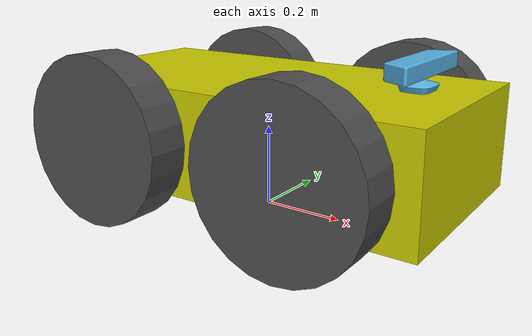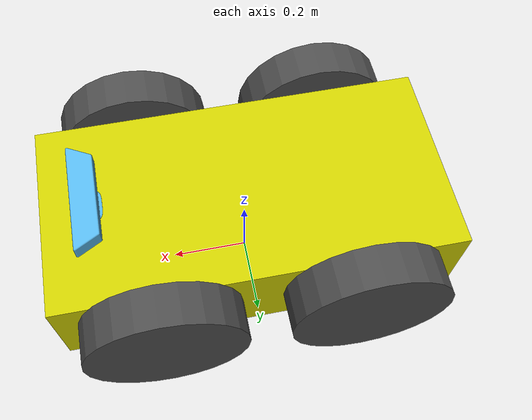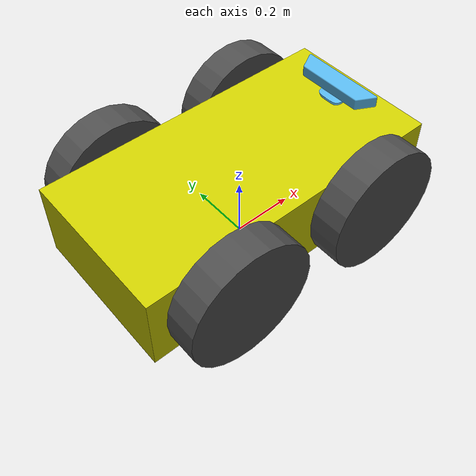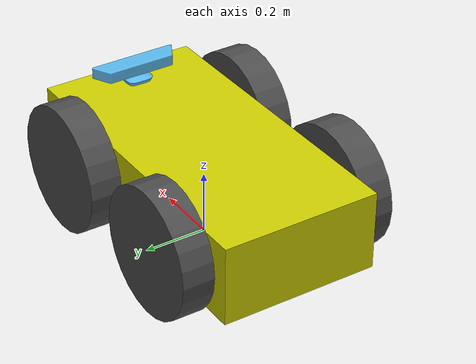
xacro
<?xml version="1.0"?>
<robot name="labrob" xmlns:xacro="http://www.ros.org/wiki/xacro">

  <!-- Included URDF/XACRO Files -->
  <xacro:include filename="$(find labrob_description)/urdf/materials.urdf.xacro" />
  <xacro:include filename="$(find labrob_description)/urdf/wheel.urdf.xacro" />
  <xacro:include filename="$(find turtlebot_description)/urdf/sensors/kinect.urdf.xacro"/>

  <!-- PROPERTY LIST -->
  <!--All units in m-kg-s-radians unit system -->
  <xacro:property name="M_PI" value="3.1415926535897931" />
  <xacro:property name="M_PI_2" value="1.570796327" />
  <xacro:property name="DEG_TO_RAD" value="0.017453293" />

  <!-- Main Body-base -->
  <xacro:property name="base_x_size" value="1.0" />
  <xacro:property name="base_y_size" value="0.5" />
  <xacro:property name="base_z_size" value="0.25" />
  <xacro:property name="hokuyo_size" value="0.05" />
  <xacro:property name="base_mass" value="35" /> <!-- in kg-->

  <!--Inertial macros for the box and cylinder. Units are kg*m^2-->
  <xacro:macro name="box_inertia" params="m x y z">
    <inertia  ixx="${m*(y*y+z*z)/12}" ixy = "0" ixz = "0"
              iyy="${m*(x*x+z*z)/12}" iyz = "0"
              izz="${m*(x*x+z*z)/12}" />
  </xacro:macro>

  <!-- BASE-FOOTPRINT -->
  <!-- base_footprint is a fictitious link(frame) that is on the ground right below base_link origin -->
  <link name="base_footprint">
    <inertial>
      <mass value="0.0001" />
      <origin xyz="0 0 0" />
      <inertia ixx="0.0001" ixy="0.0" ixz="0.0"
          iyy="0.0001" iyz="0.0"
          izz="0.0001" />
    </inertial>
    <visual>
        <origin xyz="0 0 0" rpy="0 0 0" />
        <geometry>
            <box size="0.001 0.001 0.001" />
        </geometry>
    </visual>
  </link>

  <gazebo reference="base_footprint">
    <turnGravityOff>false</turnGravityOff>
  </gazebo>

  <joint name="base_footprint_joint" type="fixed">
    <origin xyz="0 0 ${wheel_radius - base_z_origin_to_wheel_origin}" rpy="0 0 0" />
    <parent link="base_footprint"/>
    <child link="base_link" />
  </joint>

  <!-- BASE-LINK -->
  <!--Actual body/chassis of the robot-->
  <link name="base_link">
    <inertial>
      <mass value="${base_mass}" />
      <origin xyz="0 0 0" />
      <!--The 3x3 rotational inertia matrix. -->
      <box_inertia  m="${base_mass}" x="${base_x_size}" y="${base_y_size}" z="${base_z_size}"/>
    </inertial>
    <visual>
      <origin xyz="0 0 0" rpy="0 0 0" />
      <geometry>
        <box size="${base_x_size} ${base_y_size} ${base_z_size}"/>
      </geometry>
      <material name="Yellow" />
    </visual>
    <collision>
      <origin xyz="0 0 0" rpy="0 0 0 " />
      <geometry>
        <box size="${base_x_size} ${base_y_size} ${base_z_size}"/>
      </geometry>
    </collision>
  </link>
  <gazebo reference="base_link">
    <material>Gazebo/Yellow</material>
    <turnGravityOff>false</turnGravityOff>
  </gazebo>

  <!-- WHEELs -->
  <wheel fb="front" lr="right" parent="base_link" translateX="1" translateY="-1" flipY="-1"/>
  <wheel fb="front" lr="left" parent="base_link" translateX="1" translateY="1" flipY="-1"/>
  <wheel fb="back" lr="right" parent="base_link" translateX="-1" translateY="-1" flipY="-1"/>
  <wheel fb="back" lr="left" parent="base_link" translateX="-1" translateY="1" flipY="-1"/>

  <!-- SENSORS -->

  <!-- Kinect -->
  <link name="kinect_link"/>
  <joint name="kinect_joint" type="fixed">
    <origin xyz="0.5 0 -0.1" rpy="0 0 0" />
    <parent link="base_link"/>
    <child link="kinect_link" />
  </joint>
  <sensor_kinect  parent="kinect_link"/>

  <!-- DRIVE CONTROLLERS -->

  <!-- Skid steer drive controller -->
  <gazebo>
    <plugin name="gazebo_ros_control" filename="libgazebo_ros_control.so" />
    <plugin name="skid_steer_drive_controller" filename="libgazebo_ros_skid_steer_drive.so">
      <alwaysOn>1</alwaysOn>
      <updateRate>100.0</updateRate>
      <robotNamespace>/</robotNamespace>
      <leftFrontJoint>front_left_wheel_joint</leftFrontJoint>
      <rightFrontJoint>front_right_wheel_joint</rightFrontJoint>
      <leftRearJoint>back_left_wheel_joint</leftRearJoint>
      <rightRearJoint>back_right_wheel_joint</rightRearJoint>
      <wheelSeparation>${base_y_size}</wheelSeparation>
      <wheelDiameter>${2*wheel_radius}</wheelDiameter>
      <torque>100</torque>
      <broadcastTF>1</broadcastTF>
      <odometryFrame>map</odometryFrame>
      <commandTopic>cmd_vel</commandTopic>
      <odometryTopic>odom</odometryTopic>
      <robotBaseFrame>base_footprint</robotBaseFrame>
      <covariance_x>0.0001</covariance_x>
      <covariance_y>0.0001</covariance_y>
      <covariance_z>0.0001</covariance_z>
      <covariance_yaw>0.0001</covariance_yaw>
    </plugin>
  </gazebo>

  <!-- GPS Sensor -->
  <gazebo>
    <plugin name="novatel_gps_sim" filename="libhector_gazebo_ros_gps.so">
      <alwaysOn>1</alwaysOn>
      <updateRate>10.0</updateRate>
      <bodyName>base_footprint</bodyName>
      <topicName>fix</topicName>
      <velocityTopicName>fix_velocity</velocityTopicName>
      <drift>5.0 5.0 5.0</drift>
      <gaussianNoise>0.1 0.1 0.1</gaussianNoise>
      <velocityDrift>0 0 0</velocityDrift>
      <velocityGaussianNoise>0.1 0.1 0.1</velocityGaussianNoise>
    </plugin>
   </gazebo>

</robot>

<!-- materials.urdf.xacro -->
<robot>
  <material name="Black">
    <color rgba="0.0 0.0 0.0 1.0"/>
  </material>

  <material name="Blue">
    <color rgba="0.0 0.0 0.8 1.0"/>
  </material>

  <material name="Green">
    <color rgba="0.0 0.8 0.0 1.0"/>
  </material>

  <material name="Gray">
    <color rgba="0.7 0.7 0.7 1.0"/>
  </material>

  <material name="DarkGray">
    <color rgba="0.3 0.3 0.3 1.0"/>
  </material>

  <material name="Red">
    <color rgba="0.8 0.0 0.0 1.0"/>
  </material>

  <material name="White">
    <color rgba="1.0 1.0 1.0 1.0"/>
  </material>

  <material name="Yellow">
    <color rgba="0.8 0.8 0.0 1.0"/>
  </material>
</robot>

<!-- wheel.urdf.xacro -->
<robot name="wheel" xmlns:xacro="http://www.ros.org/wiki/xacro">

  <!-- Wheels -->
  <xacro:property name="wheel_radius" value="0.2" />
  <xacro:property name="wheel_height" value="0.1" />
  <xacro:property name="wheel_mass" value="2.5" /> <!-- in kg-->

  <xacro:property name="base_x_origin_to_wheel_origin" value="0.25" />
  <xacro:property name="base_y_origin_to_wheel_origin" value="0.3" />
  <xacro:property name="base_z_origin_to_wheel_origin" value="0.0" />

  <xacro:macro name="cylinder_inertia" params="m r h">
    <inertia  ixx="${m*(3*r*r+h*h)/12}" ixy = "0" ixz = "0"
              iyy="${m*(3*r*r+h*h)/12}" iyz = "0"
              izz="${m*r*r/2}" />
  </xacro:macro>

  <xacro:macro name="wheel" params="fb lr parent translateX translateY flipY"> <!--fb : front, back ; lr: left, right -->
    <link name="${fb}_${lr}_wheel">
      <visual>
        <origin xyz="0 0 0" rpy="${flipY*M_PI/2} 0 0" />
        <geometry>
          <cylinder length="${wheel_height}" radius="${wheel_radius}" />
        </geometry>
        <material name="DarkGray" />
      </visual>
      <collision>
        <origin xyz="0 0 0" rpy="${flipY*M_PI/2} 0 0" />
        <geometry>
          <cylinder length="${wheel_height}" radius="${wheel_radius}" />
        </geometry>
      </collision>
      <inertial>
        <mass value="${wheel_mass}" />
        <origin xyz="0 0 0" />
        <cylinder_inertia  m="${wheel_mass}" r="${wheel_radius}" h="${wheel_height}" />
      </inertial>
    </link>

    <gazebo reference="${fb}_${lr}_wheel">
      <mu1 value="1.0"/>
      <mu2 value="1.0"/>
      <kp  value="10000000.0" />
      <kd  value="1.0" />
      <fdir1 value="1 0 0"/>
      <material>Gazebo/Grey</material>
      <turnGravityOff>false</turnGravityOff>
    </gazebo>

    <joint name="${fb}_${lr}_wheel_joint" type="continuous">
      <parent link="${parent}"/>
      <child link="${fb}_${lr}_wheel"/>
      <origin xyz="${translateX * base_x_origin_to_wheel_origin} ${translateY * base_y_origin_to_wheel_origin} ${base_z_origin_to_wheel_origin}" rpy="0 0 0" />
      <axis xyz="0 1 0" rpy="0 0 0" />
      <limit effort="100" velocity="100"/>
      <joint_properties damping="0.0" friction="0.0"/>
    </joint>

    <!-- Transmission is important to link the joints and the controller -->
    <transmission name="${fb}_${lr}_wheel_joint_trans">
      <type>transmission_interface/SimpleTransmission</type>
      <joint name="${fb}_${lr}_wheel_joint" type="continuous">
          <hardwareInterface>EffortJointInterface</hardwareInterface>
      </joint>
      <actuator name="${fb}_${lr}_wheel_joint_motor">
        <hardwareInterface>EffortJointInterface</hardwareInterface>
        <mechanicalReduction>1</mechanicalReduction>
      </actuator>
    </transmission>

  </xacro:macro>
</robot>

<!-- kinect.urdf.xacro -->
<robot name="sensor_kinect" xmlns:xacro="http://ros.org/wiki/xacro">
  <xacro:include filename="$(find turtlebot_description)/urdf/turtlebot_gazebo.urdf.xacro"/>
  <xacro:include filename="$(find turtlebot_description)/urdf/turtlebot_properties.urdf.xacro"/>

  <xacro:property name="kinect_cam_py" value="-0.0125"/>
  <!-- Parameterised in part by the values in turtlebot_properties.urdf.xacro -->
  <xacro:macro name="sensor_kinect" params="parent">
    <joint name="camera_rgb_joint" type="fixed">
      <origin xyz="${cam_px} ${kinect_cam_py} ${cam_pz}" rpy="${cam_or} ${cam_op} ${cam_oy}"/>
      <parent link="${parent}"/>
      <child link="camera_rgb_frame" />
    </joint>
    <link name="camera_rgb_frame"/>

    <joint name="camera_rgb_optical_joint" type="fixed">
      <origin xyz="0 0 0" rpy="${-M_PI/2} 0 ${-M_PI/2}" />
      <parent link="camera_rgb_frame" />
      <child link="camera_rgb_optical_frame" />
    </joint>
    <link name="camera_rgb_optical_frame"/>

    <joint name="camera_joint" type="fixed">
      <origin xyz="-0.031 ${-kinect_cam_py} -0.016" rpy="0 0 0"/>
      <parent link="camera_rgb_frame"/>
      <child link="camera_link"/>
    </joint>
      <link name="camera_link">
      <visual>
       <origin xyz="0 0 0" rpy="0 0 ${M_PI/2}"/>
        <geometry>
         <mesh filename="package://turtlebot_description/meshes/sensors/kinect.dae"/>
        </geometry>
      </visual>
  	  <collision>
        <origin xyz="0.0 0.0 0.0" rpy="0 0 0"/>
  	    <geometry>
  	      <box size="0.07271 0.27794 0.073"/>
  	    </geometry>
  	  </collision>
      <inertial>
        <mass value="0.564" />
        <origin xyz="0 0 0" />
        <inertia ixx="0.003881243" ixy="0.0" ixz="0.0"
                 iyy="0.000498940" iyz="0.0"
                 izz="0.003879257" />
      </inertial>
    </link>

	<joint name="camera_depth_joint" type="fixed">
	  <origin xyz="0 ${2 * -kinect_cam_py} 0" rpy="0 0 0" />
	  <parent link="camera_rgb_frame" />
	  <child link="camera_depth_frame" />
	</joint>
	<link name="camera_depth_frame"/>

	<joint name="camera_depth_optical_joint" type="fixed">
	  <origin xyz="0 0 0" rpy="${-M_PI/2} 0 ${-M_PI/2}" />
	  <parent link="camera_depth_frame" />
	  <child link="camera_depth_optical_frame" />
	</joint>
	<link name="camera_depth_optical_frame"/>

	<!-- Kinect sensor for simulation -->
	<xacro:turtlebot_sim_3dsensor/>
  </xacro:macro>
</robot>

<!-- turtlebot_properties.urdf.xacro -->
<robot>
  <!--
    These properties must be observed by any machine
    that wants to be defined as a turtlebot. Refer
    to the REP for more details.

    http://www.ros.org/reps/rep-0119.html
   -->

	<property name="cam_px" value="-0.087" />
	<property name="cam_pz" value="0.2870" />
	<property name="cam_or" value="0" />
	<property name="cam_op" value="0" />
	<property name="cam_oy" value="0" />
</robot>
